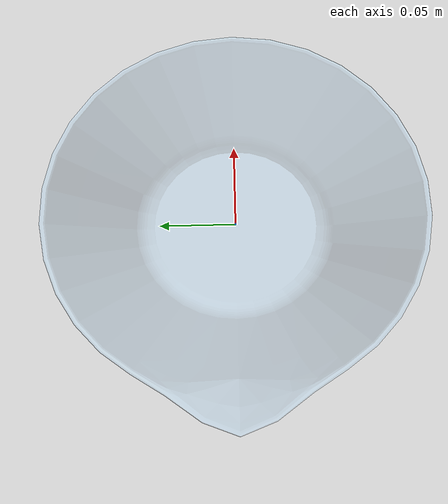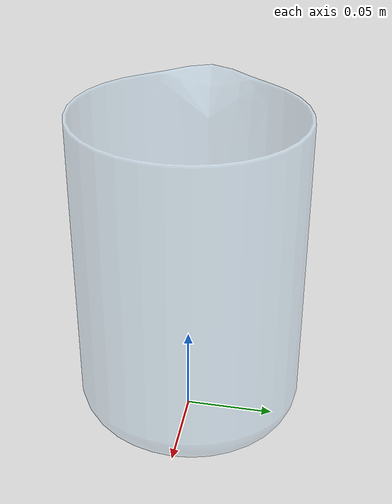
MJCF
<mujoco model="Beaker">

  <compiler angle="radian" meshdir="../../assets" />

  <option gravity="0 0 -9.81" />

  <asset>

    <mesh name="beaker_mesh" file="Beaker/base.obj" scale="3.510000 3.510000 3.780000" />
  </asset>

  <worldbody>

    <body name="beaker" quat="0.7071 0.7071 0 0" pos="0.391500 0.000000 -0.000000">

      <geom name="beaker_visual" type="mesh" mesh="beaker_mesh" rgba="0.65 0.85 1.0 0.3" contype="0" conaffinity="0" />

      <geom name="glass_sheet_collision_2" type="cylinder" size="0.057780 0.005400" pos="-0.395550 0.006615 -0.000000" euler="1.5708 0 0" contype="1" conaffinity="1" friction="0.6 0.2 0.001" density="2500" rgba="0 0 0 0" />
      <geom name="ring_1" type="box" size="0.027000 0.094500 0.002700" pos="-0.392850 0.097200 -0.059400" density="2500" contype="1" conaffinity="1" rgba="0 0 0 0" />
      <geom name="ring_2" type="box" size="0.027000 0.094500 0.002700" pos="-0.392850 0.097200 0.059400" density="2500" contype="1" conaffinity="1" rgba="0 0 0 0" />
      <geom name="ring_3" type="box" size="0.027000 0.094500 0.002700" pos="-0.337500 0.097200 -0.000000" density="2500" contype="1" conaffinity="1" euler="0 1.5708 0" rgba="0 0 0 0" />
      <geom name="ring_4" type="box" size="0.027000 0.094500 0.002700" density="2500" pos="-0.459000 0.097200 -0.000000" contype="1" conaffinity="1" euler="0 1.5708 0" rgba="0 0 0 0" />
      <geom name="ring_5" type="box" size="0.027000 0.094500 0.002700" pos="-0.441180 0.097200 -0.041310" density="2500" contype="1" conaffinity="1" euler="0 0.7854 0" rgba="0 0 0 0" />
      <geom name="ring_6" type="box" size="0.027000 0.094500 0.002700" pos="-0.353700 0.097200 0.041310" density="2500" contype="1" conaffinity="1" euler="0 0.7854 0" rgba="0 0 0 0" />
      <geom name="ring_7" type="box" size="0.027000 0.094500 0.002700" pos="-0.441180 0.097200 0.041310" density="2500" contype="1" conaffinity="1" euler="0 -0.7854 0" rgba="0 0 0 0" />
      <geom name="ring_8" type="box" size="0.027000 0.094500 0.002700" pos="-0.353700 0.097200 -0.041310" density="2500" contype="1" conaffinity="1" euler="0 -0.7854 0" rgba="0 0 0 0" />
    </body>
  </worldbody>
</mujoco>
